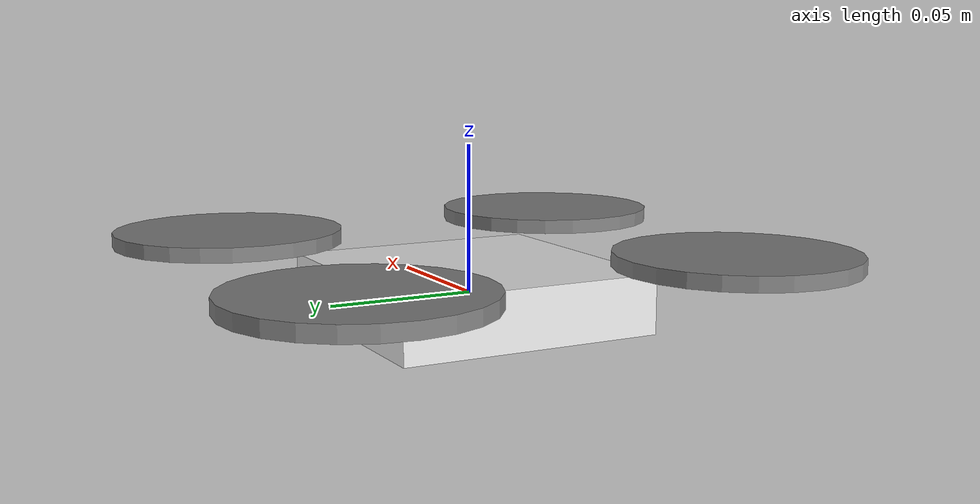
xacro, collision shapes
<?xml version="1.0"?>

<!-- Body coordinates are: x forward, y left, z up; rotation is: roll right, pitch forward, yaw left -->
<!-- See http://www.ros.org/reps/rep-0103.html -->

<robot name="tello" xmlns:xacro="http://ros.org/wiki/xacro">

    <!-- Materials -->
    <material name="gray">
        <color rgba="0.5 0.5 0.5 1.0"/>
    </material>
    <material name="white">
        <color rgba="0.9 0.9 0.9 1.0"/>
    </material>
    <material name="red">
        <color rgba="1.0 0 0 1.0"/>
    </material>
    <!-- TODO add Gazebo color information -->

    <!-- Base link -->
    <link name="base_link">
        <visual>
            <origin xyz="0 0 0" rpy="1.57 0 -1.57"/>
            <geometry>
                <mesh filename="file:///$(find tello_description)/urdf/tello_v2.stl" scale="0.0015 0.0015 0.0015" />
            </geometry>
            <material name="white"/>
        </visual>
        <visual>
            <origin xyz="0 0 0" rpy="1.57 0 -1.57"/>
            <geometry>
                <mesh filename="file:///$(find tello_description)/urdf/tello_cover.stl" scale="0.0015 0.0015 0.0015" />
            </geometry>
            <material name="white"/>
        </visual>
        <visual>
            <origin xyz="0.060 -0.065 0"/>
            <geometry>
                <cylinder length="0.025" radius="0.005"/>
            </geometry>
            <material name="gray"/>
        </visual>
        <visual>
            <origin xyz="-0.060 0.065 0"/>
            <geometry>
                <cylinder length="0.025" radius="0.005"/>
            </geometry>
            <material name="gray"/>
        </visual>
        <visual>
            <origin xyz="0.060 0.065 0"/>
            <geometry>
                <cylinder length="0.025" radius="0.005"/>
            </geometry>
            <material name="gray"/>
        </visual>
        <visual>
            <origin xyz="-0.060 -0.065 0"/>
            <geometry>
                <cylinder length="0.025" radius="0.005"/>
            </geometry>
            <material name="gray"/>
        </visual>
        <inertial>
            <mass value="0.088"/>
            <!-- Tensor for solid cuboid 18cm x 18cm x 5cm high -->
            <inertia ixx="0.00679" ixy="0" ixz="0" iyy="0.00679" iyz="0" izz="0.01313"/>
        </inertial>
        <collision name="collision">
            <geometry>
                <box size="0.09 0.09 0.020"/>
            </geometry>
            <surface>
                <friction>
                    <ode>
                        <mu>0.2</mu>
                        <mu2>0.2</mu2>
                    </ode>
                </friction>
            </surface>
        </collision>
    </link>

    <!-- Propeller links -->
    <link name="propeller1">
        <visual>
            <origin xyz="0 0 0" rpy="0 0 0"/>
            <geometry>
                <mesh filename="file:///$(find tello_description)/urdf/prop.stl" scale="1.0 1.0 1.0" />
            </geometry>
            <material name="gray"/>
        </visual>
        <inertial>
            <mass value="0.005"/>
            <inertia ixx="0.00001" ixy="0" ixz="0" iyy="0.00001" iyz="0" izz="0.00002"/>
        </inertial>
        <collision>
            <geometry>
                <cylinder length="0.005" radius="0.04"/>
            </geometry>
        </collision>
    </link>
    <link name="propeller2">
       <visual>
            <origin xyz="0 0 0" rpy="0 0 0"/>
            <geometry>
                <mesh filename="file:///$(find tello_description)/urdf/prop.stl" scale="1.0 1.0 1.0" />
            </geometry>
            <material name="gray"/>
        </visual>
        <inertial>
            <mass value="0.005"/>
            <inertia ixx="0.00001" ixy="0" ixz="0" iyy="0.00001" iyz="0" izz="0.00002"/>
        </inertial>
        <collision>
            <geometry>
                <cylinder length="0.005" radius="0.04"/>
            </geometry>
        </collision>
    </link>
    <link name="propeller3">
        <visual>
            <origin xyz="0 0 0" rpy="0 0 0"/>
            <geometry>
                <mesh filename="file:///$(find tello_description)/urdf/prop.stl" scale="1.0 1.0 1.0" />
            </geometry>
            <material name="gray"/>
        </visual>
        <inertial>
            <mass value="0.005"/>
            <inertia ixx="0.00001" ixy="0" ixz="0" iyy="0.00001" iyz="0" izz="0.00002"/>
        </inertial>
        <collision>
            <geometry>
                <cylinder length="0.005" radius="0.04"/>
            </geometry>
        </collision>
    </link>
    <link name="propeller4">
        <visual>
            <origin xyz="0 0 0" rpy="0 0 0"/>
            <geometry>
                <mesh filename="file:///$(find tello_description)/urdf/prop.stl" scale="1.0 1.0 1.0" />
            </geometry>
            <material name="gray"/>
        </visual>
        <inertial>
            <mass value="0.005"/>
            <inertia ixx="0.00001" ixy="0" ixz="0" iyy="0.00001" iyz="0" izz="0.00002"/>
        </inertial>
        <collision>
            <geometry>
                <cylinder length="0.005" radius="0.04"/>
            </geometry>
        </collision>
    </link>

    <joint name="propeller1_joint" type="continuous">
        <origin xyz="0.060 -0.065 0.0155" rpy="0 0 0"/>
        <parent link="base_link"/>
        <child link="propeller1"/>
        <axis xyz="0 0 1"/>
    </joint>
    <joint name="propeller2_joint" type="continuous">
        <origin xyz="-0.060 0.065 0.0155" rpy="0 0 0"/>
        <parent link="base_link"/>
        <child link="propeller2"/>
        <axis xyz="0 0 1"/>
    </joint>
    <joint name="propeller3_joint" type="continuous">
        <origin xyz="0.060 0.065 0.0155" rpy="0 0 0"/>
        <parent link="base_link"/>
        <child link="propeller3"/>
        <axis xyz="0 0 1"/>
    </joint>
    <joint name="propeller4_joint" type="continuous">
        <origin xyz="-0.060 -0.065 0.0155" rpy="0 0 0"/>
        <parent link="base_link"/>
        <child link="propeller4"/>
        <axis xyz="0 0 1"/>
    </joint>

    <link name="camera_optical_frame"/>
    <joint name="camera_joint" type="fixed">
        <origin xyz="0.059 0 0" rpy="0 0 0"/>
        <parent link="base_link"/>
        <child link="camera_optical_frame"/>
    </joint>

    <gazebo reference="camera_optical_frame">
        <sensor name="rs_front" type="rgbd_camera">
            <always_on>1</always_on>
            <update_rate>30</update_rate>
            <camera name="rs_front">
            <optical_frame_id>camera_optical_frame</optical_frame_id>
            <horizontal_fov>1.50098</horizontal_fov>
            <lens>
                <intrinsics>
                <!-- fx = fy = width / ( 2 * tan (hfov / 2 ) ) -->
                <fx>343.159</fx>
                <fy>343.159</fy>
                <!-- cx = ( width - 1 ) / 2 -->
                <cx>319.5</cx>
                <!-- cy = ( height - 1 ) / 2 -->
                <cy>179.5</cy>
                <s>0</s>
                </intrinsics>
            </lens>
            <distortion>
                <k1>0.0</k1>
                <k2>0.0</k2>
                <k3>0.0</k3>
                <p1>0.0</p1>
                <p2>0.0</p2>
                <center>0.5 0.5</center>
            </distortion>
            <image>
                <width>640</width>
                <height>360</height>
                <format>R8G8B8</format>
            </image>
            <clip>
                <near>0.01</near>
                <far>300</far>
            </clip>
            <depth_camera>
                <clip>
                <near>0.1</near>
                <far>10</far>
                </clip>
            </depth_camera>
            <noise>
                <type>gaussian</type>
                <mean>0</mean>
                <stddev>0.007</stddev>
            </noise>
            </camera>
        </sensor>
    </gazebo>

    <gazebo reference="base_link">
        <sensor name="imu_sensor" type="imu">
        <topic>/tello/imu</topic>
        <plugin filename="gz-sim-imu-system" name="gz::sim::systems::Imu">
            <initial_orientation_as_reference>false</initial_orientation_as_reference>
        </plugin>
        <always_on>true</always_on>
        <update_rate>200</update_rate>
        <visualize>true</visualize>
        <gz_frame_id>base_link</gz_frame_id>
        <imu>
            <angular_velocity>
            <x>
                <noise type="gaussian">
                <mean>0.0</mean>
                <stddev>2e-4</stddev>
                <bias_mean>0.0000075</bias_mean>
                <bias_stddev>0.0000008</bias_stddev>
                </noise>
            </x>
            <y>
                <noise type="gaussian">
                <mean>0.0</mean>
                <stddev>2e-4</stddev>
                <bias_mean>0.0000075</bias_mean>
                <bias_stddev>0.0000008</bias_stddev>
                </noise>
            </y>
            <z>
                <noise type="gaussian">
                <mean>0.0</mean>
                <stddev>2e-4</stddev>
                <bias_mean>0.0000075</bias_mean>
                <bias_stddev>0.0000008</bias_stddev>
                </noise>
            </z>
            </angular_velocity>
            <linear_acceleration>
            <x>
                <noise type="gaussian">
                <mean>0.0</mean>
                <stddev>1.7e-2</stddev>
                <bias_mean>0.1</bias_mean>
                <bias_stddev>0.001</bias_stddev>
                </noise>
            </x>
            <y>
                <noise type="gaussian">
                <mean>0.0</mean>
                <stddev>1.7e-2</stddev>
                <bias_mean>0.1</bias_mean>
                <bias_stddev>0.001</bias_stddev>
                </noise>
            </y>
            <z>
                <noise type="gaussian">
                <mean>0.0</mean>
                <stddev>1.7e-2</stddev>
                <bias_mean>0.1</bias_mean>
                <bias_stddev>0.001</bias_stddev>
                </noise>
            </z>
            </linear_acceleration>
        </imu>
        </sensor>
    </gazebo>

    <gazebo>
        <plugin name='gz::sim::systems::MulticopterMotorModel' filename='ignition-gazebo-multicopter-motor-model-system'>
            <robotNamespace>tello</robotNamespace>
            <jointName>propeller1_joint</jointName>
            <linkName>propeller1</linkName>
            <turningDirection>ccw</turningDirection>
            <timeConstantUp>0.0125</timeConstantUp>
            <timeConstantDown>0.025</timeConstantDown>
            <maxRotVelocity>300.0</maxRotVelocity>
            <motorConstant>8.54858e-06</motorConstant>
            <momentConstant>0.016</momentConstant>
            <commandSubTopic>gazebo/command/motor_speed</commandSubTopic>
            <motorNumber>0</motorNumber>
            <rotorDragCoefficient>8.06428e-05</rotorDragCoefficient>
            <rollingMomentCoefficient>1e-06</rollingMomentCoefficient>
            <motorSpeedPubTopic>motor_speed/0</motorSpeedPubTopic>
            <rotorVelocitySlowdownSim>10</rotorVelocitySlowdownSim>
            <motorType>velocity</motorType>
        </plugin>
        <plugin name='gz::sim::systems::MulticopterMotorModel' filename='ignition-gazebo-multicopter-motor-model-system'>
            <robotNamespace>tello</robotNamespace>
            <jointName>propeller2_joint</jointName>
            <linkName>propeller2</linkName>
            <turningDirection>ccw</turningDirection>
            <timeConstantUp>0.0125</timeConstantUp>
            <timeConstantDown>0.025</timeConstantDown>
            <maxRotVelocity>300.0</maxRotVelocity>
            <motorConstant>8.54858e-06</motorConstant>
            <momentConstant>0.016</momentConstant>
            <commandSubTopic>gazebo/command/motor_speed</commandSubTopic>
            <motorNumber>1</motorNumber>
            <rotorDragCoefficient>8.06428e-05</rotorDragCoefficient>
            <rollingMomentCoefficient>1e-06</rollingMomentCoefficient>
            <motorSpeedPubTopic>motor_speed/1</motorSpeedPubTopic>
            <rotorVelocitySlowdownSim>10</rotorVelocitySlowdownSim>
            <motorType>velocity</motorType>
        </plugin>
        <plugin name='gz::sim::systems::MulticopterMotorModel' filename='ignition-gazebo-multicopter-motor-model-system'>
            <robotNamespace>tello</robotNamespace>
            <jointName>propeller3_joint</jointName>
            <linkName>propeller3</linkName>
            <turningDirection>cw</turningDirection>
            <timeConstantUp>0.0125</timeConstantUp>
            <timeConstantDown>0.025</timeConstantDown>
            <maxRotVelocity>300.0</maxRotVelocity>
            <motorConstant>8.54858e-06</motorConstant>
            <momentConstant>0.016</momentConstant>
            <commandSubTopic>gazebo/command/motor_speed</commandSubTopic>
            <motorNumber>2</motorNumber>
            <rotorDragCoefficient>8.06428e-05</rotorDragCoefficient>
            <rollingMomentCoefficient>1e-06</rollingMomentCoefficient>
            <motorSpeedPubTopic>motor_speed/2</motorSpeedPubTopic>
            <rotorVelocitySlowdownSim>10</rotorVelocitySlowdownSim>
            <motorType>velocity</motorType>
        </plugin>
        <plugin name='gz::sim::systems::MulticopterMotorModel' filename='ignition-gazebo-multicopter-motor-model-system'>
            <robotNamespace>tello</robotNamespace>
            <jointName>propeller4_joint</jointName>
            <linkName>propeller4</linkName>
            <turningDirection>cw</turningDirection>
            <timeConstantUp>0.0125</timeConstantUp>
            <timeConstantDown>0.025</timeConstantDown>
            <maxRotVelocity>300.0</maxRotVelocity>
            <motorConstant>8.54858e-06</motorConstant>
            <momentConstant>0.016</momentConstant>
            <commandSubTopic>gazebo/command/motor_speed</commandSubTopic>
            <motorNumber>3</motorNumber>
            <rotorDragCoefficient>8.06428e-05</rotorDragCoefficient>
            <rollingMomentCoefficient>1e-06</rollingMomentCoefficient>
            <motorSpeedPubTopic>motor_speed/3</motorSpeedPubTopic>
            <rotorVelocitySlowdownSim>10</rotorVelocitySlowdownSim>
            <motorType>velocity</motorType>
        </plugin>

        <plugin filename="ignition-gazebo-joint-state-publisher-system" name="ignition::gazebo::systems::JointStatePublisher">
            <update_rate>100</update_rate>
            <joint_name>propeller1_joint</joint_name>
            <joint_name>propeller2_joint</joint_name>
            <joint_name>propeller3_joint</joint_name>
            <joint_name>propeller4_joint</joint_name>
        </plugin>

        <plugin name='gz::sim::systems::MulticopterVelocityControl' filename='ignition-gazebo-multicopter-control-system'>
            <robotNamespace>tello</robotNamespace>
            <commandSubTopic>cmd_vel</commandSubTopic>
            <enableSubTopic>enable</enableSubTopic>
            <comLinkName>base_link</comLinkName>
            <velocityGain>0.6 0.8 2.3</velocityGain>
            <attitudeGain>0.1 0.3 0.05</attitudeGain>
            <angularRateGain>0.2 0.15 0.01</angularRateGain>
            <maximumLinearAcceleration>1 1 2</maximumLinearAcceleration>
            <rotorConfiguration>
            <rotor>
                <jointName>propeller1_joint</jointName>
                <forceConstant>8.54858e-06</forceConstant>
                <momentConstant>0.016</momentConstant>
                <direction>1</direction>
            </rotor>
            <rotor>
                <jointName>propeller2_joint</jointName>
                <forceConstant>8.54858e-06</forceConstant>
                <momentConstant>0.016</momentConstant>
                <direction>1</direction>
            </rotor>
            <rotor>
                <jointName>propeller3_joint</jointName>
                <forceConstant>8.54858e-06</forceConstant>
                <momentConstant>0.016</momentConstant>
                <direction>-1</direction>
            </rotor>
            <rotor>
                <jointName>propeller4_joint</jointName>
                <forceConstant>8.54858e-06</forceConstant>
                <momentConstant>0.016</momentConstant>
                <direction>-1</direction>
            </rotor>
            </rotorConfiguration>
        </plugin>
        <plugin name='ignition::gazebo::systems::OdometryPublisher' filename='ignition-gazebo-odometry-publisher-system'>
            <dimensions>3</dimensions>
            <odom_frame>/odom</odom_frame>
            <odom_topic>tello/odometry</odom_topic>
            <robot_base_frame>base_link</robot_base_frame>
            <tf_topic>/tello/tf</tf_topic>
        </plugin>
    </gazebo>

</robot>
